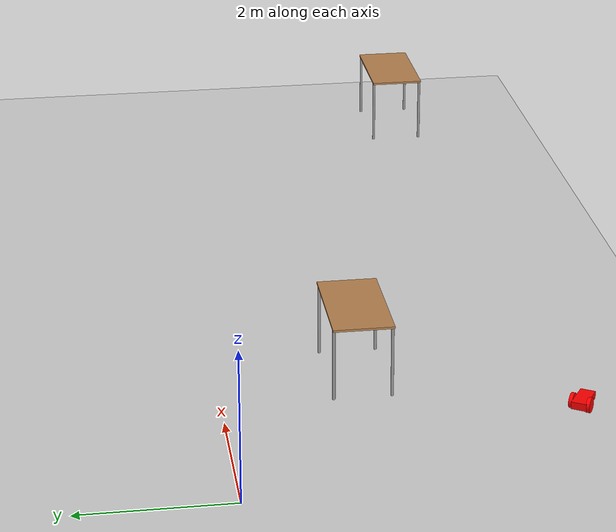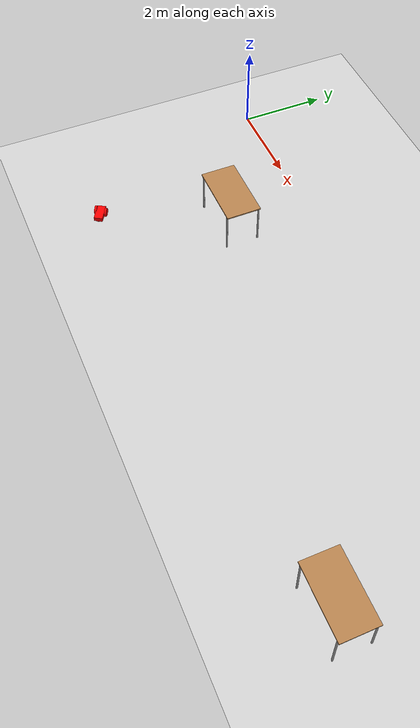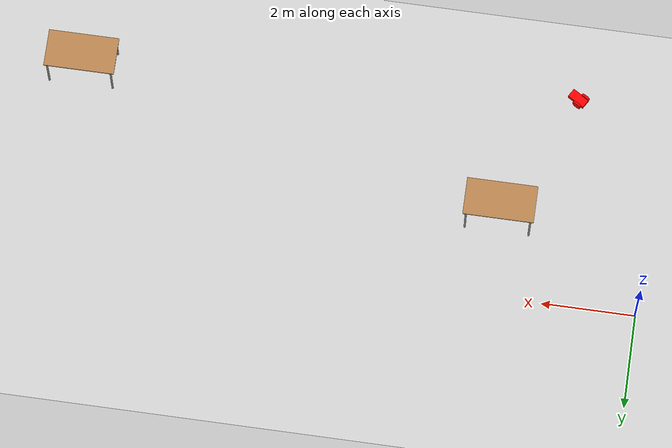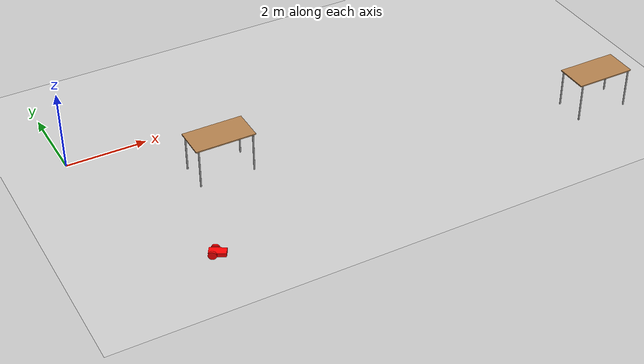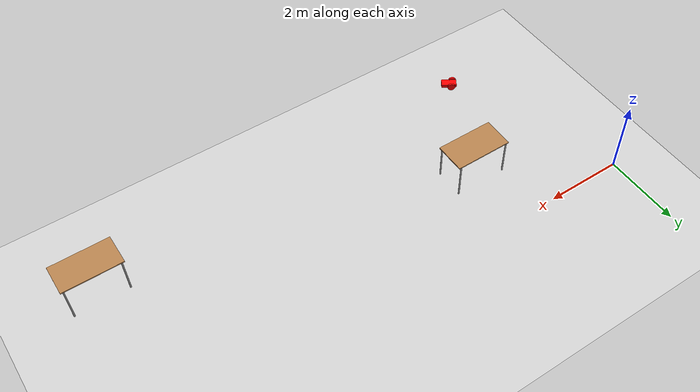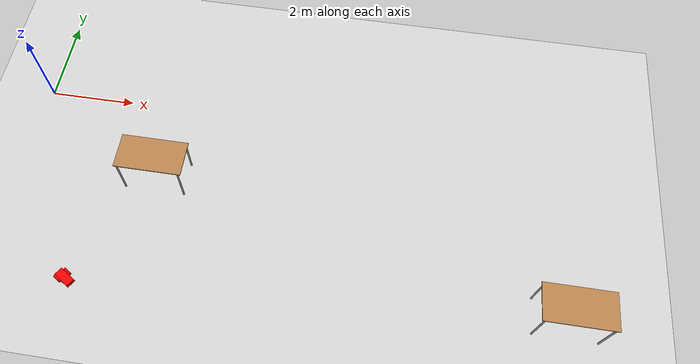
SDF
<sdf version="1.6">
 <world name="default">
  <model name="ground_plane">
   <static>1</static>
   <link name="link">
    <collision name="collision">
     <geometry><plane><normal>0 0 1</normal><size>100 100</size></plane></geometry>
     <surface><friction><ode><mu>100</mu><mu2>50</mu2></ode></friction></surface>
    </collision>
    <visual name="visual">
     <cast_shadows>0</cast_shadows>
     <geometry><plane><normal>0 0 1</normal><size>100 100</size></plane></geometry>
     <material>
      <script><uri>file://media/materials/scripts/gazebo.material</uri><name>Gazebo/Grey</name></script>
     </material>
    </visual>
   </link>
  </model>
  <model name="HumanoidRobot_0">
   <link name="link_0">
    <pose>-0.053333 0.003341 0 0 -0 0</pose>
    <inertial>
     <mass>1</mass>
     <inertia>
      <ixx>0.166667</ixx>
      <ixy>0</ixy>
      <ixz>0</ixz>
      <iyy>0.166667</iyy>
      <iyz>0</iyz>
      <izz>0.166667</izz>
     </inertia>
    </inertial>
    <visual name="ModelPreview_0::link_0::visual_1">
     <pose>-0.15 0 -0.05 0 -0 0</pose>
     <geometry><sphere><radius>0.05</radius></sphere></geometry>
     <material>
      <lighting>1</lighting>
      <script><uri>file://media/materials/scripts/gazebo.material</uri><name>Gazebo/Grey</name></script>
      <shader type="pixel"><normal_map>__default__</normal_map></shader>
      <ambient>1 0 0 1</ambient>
      <diffuse>1 0 0 1</diffuse>
      <specular>1 0 0 1</specular>
      <emissive>0 0 0 1</emissive>
     </material>
    </visual>
    <visual name="visual">
     <geometry><box><size>0.4 0.2 0.1</size></box></geometry>
     <material>
      <lighting>1</lighting>
      <script><uri>file://media/materials/scripts/gazebo.material</uri><name>Gazebo/Grey</name></script>
      <shader type="pixel"><normal_map>__default__</normal_map></shader>
      <ambient>1 0 0 1</ambient>
      <diffuse>1 0 0 1</diffuse>
      <specular>1 0 0 1</specular>
      <emissive>0 0 0 1</emissive>
     </material>
    </visual>
    <collision name="collision_1">
     <pose>-0.15 0 -0.05 0 -0 0</pose>
     <geometry><sphere><radius>0.05</radius></sphere></geometry>
     <surface>
      <friction>
       <ode><mu>0</mu><mu2>0</mu2><fdir1>0 0 0</fdir1><slip1>1</slip1><slip2>1</slip2></ode>
       <torsional>
        <coefficient>1</coefficient>
        <patch_radius>0</patch_radius>
        <surface_radius>0</surface_radius>
        <use_patch_radius>1</use_patch_radius>
        <ode><slip>0</slip></ode>
       </torsional>
      </friction>
      <bounce><restitution_coefficient>0</restitution_coefficient><threshold>1e+06</threshold></bounce>
      <contact>
       <collide_without_contact>0</collide_without_contact>
       <collide_without_contact_bitmask>1</collide_without_contact_bitmask>
       <collide_bitmask>1</collide_bitmask>
       <ode>
        <soft_cfm>0</soft_cfm>
        <soft_erp>0.2</soft_erp>
        <kp>1e+13</kp>
        <kd>1</kd>
        <max_vel>0.01</max_vel>
        <min_depth>0</min_depth>
       </ode>
       <bullet>
        <split_impulse>1</split_impulse>
        <split_impulse_penetration_threshold>-0.01</split_impulse_penetration_threshold>
        <soft_cfm>0</soft_cfm>
        <soft_erp>0.2</soft_erp>
        <kp>1e+13</kp>
        <kd>1</kd>
       </bullet>
      </contact>
     </surface>
    </collision>
    <collision name="collision">
     <geometry><box><size>0.4 0.2 0.1</size></box></geometry>
     <surface>
      <friction>
       <ode><mu>1</mu><mu2>1</mu2><fdir1>0 0 0</fdir1><slip1>0</slip1><slip2>0</slip2></ode>
       <torsional>
        <coefficient>1</coefficient>
        <patch_radius>0</patch_radius>
        <surface_radius>0</surface_radius>
        <use_patch_radius>1</use_patch_radius>
        <ode><slip>0</slip></ode>
       </torsional>
      </friction>
      <bounce><restitution_coefficient>0</restitution_coefficient><threshold>1e+06</threshold></bounce>
      <contact>
       <collide_without_contact>0</collide_without_contact>
       <collide_without_contact_bitmask>1</collide_without_contact_bitmask>
       <collide_bitmask>1</collide_bitmask>
       <ode>
        <soft_cfm>0</soft_cfm>
        <soft_erp>0.2</soft_erp>
        <kp>1e+13</kp>
        <kd>1</kd>
        <max_vel>0.01</max_vel>
        <min_depth>0</min_depth>
       </ode>
       <bullet>
        <split_impulse>1</split_impulse>
        <split_impulse_penetration_threshold>-0.01</split_impulse_penetration_threshold>
        <soft_cfm>0</soft_cfm>
        <soft_erp>0.2</soft_erp>
        <kp>1e+13</kp>
        <kd>1</kd>
       </bullet>
      </contact>
     </surface>
    </collision>
   </link>
   <link name="link_1">
    <pose>0.006667 -0.121672 0 1.5707 -0 0</pose>
    <inertial>
     <mass>1</mass>
     <inertia><ixx>0.145833</ixx><ixy>0</ixy><ixz>0</ixz><iyy>0.145833</iyy><iyz>0</iyz><izz>0.125</izz></inertia>
    </inertial>
    <visual name="visual">
     <geometry><cylinder><radius>0.1</radius><length>0.05</length></cylinder></geometry>
     <material>
      <lighting>1</lighting>
      <script><uri>file://media/materials/scripts/gazebo.material</uri><name>Gazebo/Grey</name></script>
      <shader type="pixel"><normal_map>__default__</normal_map></shader>
      <ambient>1 0 0 1</ambient>
      <diffuse>1 0 0 1</diffuse>
      <specular>1 0 0 1</specular>
      <emissive>0 0 0 1</emissive>
     </material>
    </visual>
    <collision name="collision">
     <geometry><cylinder><radius>0.1</radius><length>0.05</length></cylinder></geometry>
     <surface>
      <friction>
       <ode><mu>1</mu><mu2>1</mu2><fdir1>0 0 0</fdir1><slip1>0</slip1><slip2>0</slip2></ode>
       <torsional>
        <coefficient>1</coefficient>
        <patch_radius>0</patch_radius>
        <surface_radius>0</surface_radius>
        <use_patch_radius>1</use_patch_radius>
        <ode><slip>0</slip></ode>
       </torsional>
      </friction>
      <bounce><restitution_coefficient>0</restitution_coefficient><threshold>1e+06</threshold></bounce>
      <contact>
       <collide_without_contact>0</collide_without_contact>
       <collide_without_contact_bitmask>1</collide_without_contact_bitmask>
       <collide_bitmask>1</collide_bitmask>
       <ode>
        <soft_cfm>0</soft_cfm>
        <soft_erp>0.2</soft_erp>
        <kp>1e+13</kp>
        <kd>1</kd>
        <max_vel>0.01</max_vel>
        <min_depth>0</min_depth>
       </ode>
       <bullet>
        <split_impulse>1</split_impulse>
        <split_impulse_penetration_threshold>-0.01</split_impulse_penetration_threshold>
        <soft_cfm>0</soft_cfm>
        <soft_erp>0.2</soft_erp>
        <kp>1e+13</kp>
        <kd>1</kd>
       </bullet>
      </contact>
     </surface>
    </collision>
   </link>
   <link name="link_1_clone">
    <pose>0.046667 0.118331 0 1.5707 -0 0</pose>
    <inertial>
     <mass>1</mass>
     <inertia><ixx>0.145833</ixx><ixy>0</ixy><ixz>0</ixz><iyy>0.145833</iyy><iyz>0</iyz><izz>0.125</izz></inertia>
    </inertial>
    <visual name="visual">
     <geometry><cylinder><radius>0.1</radius><length>0.05</length></cylinder></geometry>
     <material>
      <lighting>1</lighting>
      <script><uri>file://media/materials/scripts/gazebo.material</uri><name>Gazebo/Grey</name></script>
      <shader type="pixel"><normal_map>__default__</normal_map></shader>
      <ambient>1 0 0 1</ambient>
      <diffuse>1 0 0 1</diffuse>
      <specular>1 0 0 1</specular>
      <emissive>0 0 0 1</emissive>
     </material>
    </visual>
    <collision name="collision">
     <geometry><cylinder><radius>0.1</radius><length>0.05</length></cylinder></geometry>
     <surface>
      <friction>
       <ode><mu>1</mu><mu2>1</mu2><fdir1>0 0 0</fdir1><slip1>0</slip1><slip2>0</slip2></ode>
       <torsional>
        <coefficient>1</coefficient>
        <patch_radius>0</patch_radius>
        <surface_radius>0</surface_radius>
        <use_patch_radius>1</use_patch_radius>
        <ode><slip>0</slip></ode>
       </torsional>
      </friction>
      <bounce><restitution_coefficient>0</restitution_coefficient><threshold>1e+06</threshold></bounce>
      <contact>
       <collide_without_contact>0</collide_without_contact>
       <collide_without_contact_bitmask>1</collide_without_contact_bitmask>
       <collide_bitmask>1</collide_bitmask>
       <ode>
        <soft_cfm>0</soft_cfm>
        <soft_erp>0.2</soft_erp>
        <kp>1e+13</kp>
        <kd>1</kd>
        <max_vel>0.01</max_vel>
        <min_depth>0</min_depth>
       </ode>
       <bullet>
        <split_impulse>1</split_impulse>
        <split_impulse_penetration_threshold>-0.01</split_impulse_penetration_threshold>
        <soft_cfm>0</soft_cfm>
        <soft_erp>0.2</soft_erp>
        <kp>1e+13</kp>
        <kd>1</kd>
       </bullet>
      </contact>
     </surface>
    </collision>
   </link>
   <joint name="link_0_JOINT_0" type="revolute">
    <parent>link_0</parent>
    <child>link_1</child>
    <axis>
     <xyz>0 0 1</xyz>
     <use_parent_model_frame>0</use_parent_model_frame>
     <limit>
      <lower>-1.79769e+308</lower>
      <upper>1.79769e+308</upper>
      <effort>-1</effort>
      <velocity>-1</velocity>
     </limit>
     <dynamics>
      <spring_reference>0</spring_reference>
      <spring_stiffness>0</spring_stiffness>
      <damping>0</damping>
     </dynamics>
    </axis>
    <physics>
     <ode><limit><cfm>0</cfm><erp>0.2</erp></limit><suspension><cfm>0</cfm><erp>0.2</erp></suspension></ode>
    </physics>
   </joint>
   <joint name="link_0_JOINT_1" type="revolute">
    <parent>link_0</parent>
    <child>link_1_clone</child>
    <axis>
     <xyz>0 0 1</xyz>
     <use_parent_model_frame>0</use_parent_model_frame>
     <limit>
      <lower>-1.79769e+308</lower>
      <upper>1.79769e+308</upper>
      <effort>-1</effort>
      <velocity>-1</velocity>
     </limit>
     <dynamics>
      <spring_reference>0</spring_reference>
      <spring_stiffness>0</spring_stiffness>
      <damping>0</damping>
     </dynamics>
    </axis>
    <physics>
     <ode><limit><cfm>0</cfm><erp>0.2</erp></limit><suspension><cfm>0</cfm><erp>0.2</erp></suspension></ode>
    </physics>
   </joint>
   <static>0</static>
   <pose>1.73238 -4.54542 0.100005 1.1e-05 8.9e-05 2.58851</pose>
  </model>
  <model name="table">
   <static>1</static>
   <link name="link">
    <collision name="surface">
     <pose>0 0 1 0 -0 0</pose>
     <geometry><box><size>1.5 0.8 0.03</size></box></geometry>
     <surface><friction><ode><mu>0.6</mu><mu2>0.6</mu2></ode></friction></surface>
    </collision>
    <visual name="visual1">
     <pose>0 0 1 0 -0 0</pose>
     <geometry><box><size>1.5 0.8 0.03</size></box></geometry>
     <material>
      <script><uri>file://media/materials/scripts/gazebo.material</uri><name>Gazebo/Wood</name></script>
     </material>
    </visual>
    <collision name="front_left_leg">
     <pose>0.68 0.38 0.5 0 -0 0</pose>
     <geometry><cylinder><radius>0.02</radius><length>1</length></cylinder></geometry>
    </collision>
    <visual name="front_left_leg">
     <pose>0.68 0.38 0.5 0 -0 0</pose>
     <geometry><cylinder><radius>0.02</radius><length>1</length></cylinder></geometry>
     <material>
      <script><uri>file://media/materials/scripts/gazebo.material</uri><name>Gazebo/Grey</name></script>
     </material>
    </visual>
    <collision name="front_right_leg">
     <pose>0.68 -0.38 0.5 0 -0 0</pose>
     <geometry><cylinder><radius>0.02</radius><length>1</length></cylinder></geometry>
    </collision>
    <visual name="front_right_leg">
     <pose>0.68 -0.38 0.5 0 -0 0</pose>
     <geometry><cylinder><radius>0.02</radius><length>1</length></cylinder></geometry>
     <material>
      <script><uri>file://media/materials/scripts/gazebo.material</uri><name>Gazebo/Grey</name></script>
     </material>
    </visual>
    <collision name="back_right_leg">
     <pose>-0.68 -0.38 0.5 0 -0 0</pose>
     <geometry><cylinder><radius>0.02</radius><length>1</length></cylinder></geometry>
    </collision>
    <visual name="back_right_leg">
     <pose>-0.68 -0.38 0.5 0 -0 0</pose>
     <geometry><cylinder><radius>0.02</radius><length>1</length></cylinder></geometry>
     <material>
      <script><uri>file://media/materials/scripts/gazebo.material</uri><name>Gazebo/Grey</name></script>
     </material>
    </visual>
    <collision name="back_left_leg">
     <pose>-0.68 0.38 0.5 0 -0 0</pose>
     <geometry><cylinder><radius>0.02</radius><length>1</length></cylinder></geometry>
    </collision>
    <visual name="back_left_leg">
     <pose>-0.68 0.38 0.5 0 -0 0</pose>
     <geometry><cylinder><radius>0.02</radius><length>1</length></cylinder></geometry>
     <material>
      <script><uri>file://media/materials/scripts/gazebo.material</uri><name>Gazebo/Grey</name></script>
     </material>
    </visual>
   </link>
   <pose>12.3187 -3.86475 0 0 -0 0</pose>
  </model>
  <model name="table_clone">
   <static>1</static>
   <link name="link">
    <collision name="surface">
     <pose>0 0 1 0 -0 0</pose>
     <geometry><box><size>1.5 0.8 0.03</size></box></geometry>
     <surface><friction><ode><mu>0.6</mu><mu2>0.6</mu2></ode></friction></surface>
    </collision>
    <visual name="visual1">
     <pose>0 0 1 0 -0 0</pose>
     <geometry><box><size>1.5 0.8 0.03</size></box></geometry>
     <material>
      <script><uri>file://media/materials/scripts/gazebo.material</uri><name>Gazebo/Wood</name></script>
     </material>
    </visual>
    <collision name="front_left_leg">
     <pose>0.68 0.38 0.5 0 -0 0</pose>
     <geometry><cylinder><radius>0.02</radius><length>1</length></cylinder></geometry>
    </collision>
    <visual name="front_left_leg">
     <pose>0.68 0.38 0.5 0 -0 0</pose>
     <geometry><cylinder><radius>0.02</radius><length>1</length></cylinder></geometry>
     <material>
      <script><uri>file://media/materials/scripts/gazebo.material</uri><name>Gazebo/Grey</name></script>
     </material>
    </visual>
    <collision name="front_right_leg">
     <pose>0.68 -0.38 0.5 0 -0 0</pose>
     <geometry><cylinder><radius>0.02</radius><length>1</length></cylinder></geometry>
    </collision>
    <visual name="front_right_leg">
     <pose>0.68 -0.38 0.5 0 -0 0</pose>
     <geometry><cylinder><radius>0.02</radius><length>1</length></cylinder></geometry>
     <material>
      <script><uri>file://media/materials/scripts/gazebo.material</uri><name>Gazebo/Grey</name></script>
     </material>
    </visual>
    <collision name="back_right_leg">
     <pose>-0.68 -0.38 0.5 0 -0 0</pose>
     <geometry><cylinder><radius>0.02</radius><length>1</length></cylinder></geometry>
    </collision>
    <visual name="back_right_leg">
     <pose>-0.68 -0.38 0.5 0 -0 0</pose>
     <geometry><cylinder><radius>0.02</radius><length>1</length></cylinder></geometry>
     <material>
      <script><uri>file://media/materials/scripts/gazebo.material</uri><name>Gazebo/Grey</name></script>
     </material>
    </visual>
    <collision name="back_left_leg">
     <pose>-0.68 0.38 0.5 0 -0 0</pose>
     <geometry><cylinder><radius>0.02</radius><length>1</length></cylinder></geometry>
    </collision>
    <visual name="back_left_leg">
     <pose>-0.68 0.38 0.5 0 -0 0</pose>
     <geometry><cylinder><radius>0.02</radius><length>1</length></cylinder></geometry>
     <material>
      <script><uri>file://media/materials/scripts/gazebo.material</uri><name>Gazebo/Grey</name></script>
     </material>
    </visual>
   </link>
   <pose>3.12494 -1.83773 0 0 -0 0</pose>
  </model>
 </world>
</sdf>
